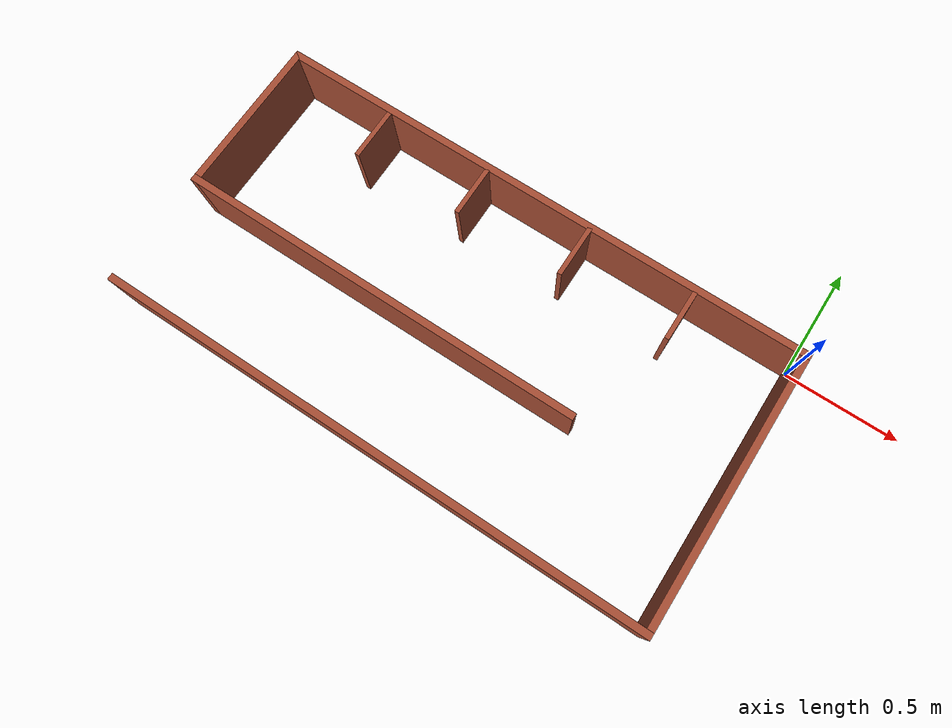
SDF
<?xml version='1.0'?>
<sdf version='1.7'>
  <model name='wrg_field'>
    <pose>-1.185 -0.585 0 0 -0 0</pose>
    <link name='Wall_16'>
      <collision name='Wall_16_Collision'>
        <geometry>
          <box>
            <size>1.2 0.03 0.3</size>
          </box>
        </geometry>
        <pose>0 0 0.15 0 -0 0</pose>
      </collision>
      <visual name='Wall_16_Visual'>
        <pose>0 0 0.15 0 -0 0</pose>
        <geometry>
          <box>
            <size>1.2 0.03 0.3</size>
          </box>
        </geometry>
        <material>
          <script>
            <uri>file://media/materials/scripts/gazebo.material</uri>
            <name>Gazebo/Bricks</name>
          </script>
          <ambient>1 1 1 1</ambient>
        </material>
        <meta>
          <layer>0</layer>
        </meta>
      </visual>
      <pose>1.185 0 0 0 -0 -1.5708</pose>
    </link>
    <link name='Wall_18'>
      <collision name='Wall_18_Collision'>
        <geometry>
          <box>
            <size>2.4 0.03 0.3</size>
          </box>
        </geometry>
        <pose>0 0 0.15 0 -0 0</pose>
      </collision>
      <visual name='Wall_18_Visual'>
        <pose>0 0 0.15 0 -0 0</pose>
        <geometry>
          <box>
            <size>2.4 0.03 0.3</size>
          </box>
        </geometry>
        <material>
          <script>
            <uri>file://media/materials/scripts/gazebo.material</uri>
            <name>Gazebo/Bricks</name>
          </script>
          <ambient>1 1 1 1</ambient>
        </material>
        <meta>
          <layer>0</layer>
        </meta>
      </visual>
      <pose>0 0.585 0 0 -0 3.14159</pose>
    </link>
    <link name='Wall_20'>
      <collision name='Wall_20_Collision'>
        <geometry>
          <box>
            <size>0.24 0.02 0.3</size>
          </box>
        </geometry>
        <pose>0 0 0.15 0 -0 0</pose>
      </collision>
      <visual name='Wall_20_Visual'>
        <pose>0 0 0.15 0 -0 0</pose>
        <geometry>
          <box>
            <size>0.24 0.02 0.3</size>
          </box>
        </geometry>
        <material>
          <script>
            <uri>file://media/materials/scripts/gazebo.material</uri>
            <name>Gazebo/Bricks</name>
          </script>
          <ambient>1 1 1 1</ambient>
        </material>
        <meta>
          <layer>0</layer>
        </meta>
      </visual>
      <pose>0.711 0.475 0 0 -0 -1.5708</pose>
    </link>
    <link name='Wall_22'>
      <collision name='Wall_22_Collision'>
        <geometry>
          <box>
            <size>0.24 0.02 0.3</size>
          </box>
        </geometry>
        <pose>0 0 0.15 0 -0 0</pose>
      </collision>
      <visual name='Wall_22_Visual'>
        <pose>0 0 0.15 0 -0 0</pose>
        <geometry>
          <box>
            <size>0.24 0.02 0.3</size>
          </box>
        </geometry>
        <material>
          <script>
            <uri>file://media/materials/scripts/gazebo.material</uri>
            <name>Gazebo/Bricks</name>
          </script>
          <ambient>1 1 1 1</ambient>
        </material>
        <meta>
          <layer>0</layer>
        </meta>
      </visual>
      <pose>0.237 0.475 0 0 -0 -1.5708</pose>
    </link>
    <link name='Wall_24'>
      <collision name='Wall_24_Collision'>
        <geometry>
          <box>
            <size>0.24 0.02 0.3</size>
          </box>
        </geometry>
        <pose>0 0 0.15 0 -0 0</pose>
      </collision>
      <visual name='Wall_24_Visual'>
        <pose>0 0 0.15 0 -0 0</pose>
        <geometry>
          <box>
            <size>0.24 0.02 0.3</size>
          </box>
        </geometry>
        <material>
          <script>
            <uri>file://media/materials/scripts/gazebo.material</uri>
            <name>Gazebo/Bricks</name>
          </script>
          <ambient>1 1 1 1</ambient>
        </material>
        <meta>
          <layer>0</layer>
        </meta>
      </visual>
      <pose>-0.237 0.475 0 0 -0 -1.5708</pose>
    </link>
    <link name='Wall_28'>
      <collision name='Wall_28_Collision'>
        <geometry>
          <box>
            <size>0.25 0.02 0.3</size>
          </box>
        </geometry>
        <pose>0 0 0.15 0 -0 0</pose>
      </collision>
      <visual name='Wall_28_Visual'>
        <pose>0 0 0.15 0 -0 0</pose>
        <geometry>
          <box>
            <size>0.25 0.02 0.3</size>
          </box>
        </geometry>
        <material>
          <script>
            <uri>file://media/materials/scripts/gazebo.material</uri>
            <name>Gazebo/Bricks</name>
          </script>
          <ambient>1 1 1 1</ambient>
        </material>
        <meta>
          <layer>0</layer>
        </meta>
      </visual>
      <pose>-0.711 0.47 0 0 -0 -1.5708</pose>
    </link>
    <link name='Wall_30'>
      <collision name='Wall_30_Collision'>
        <geometry>
          <box>
            <size>0.7 0.03 0.3</size>
          </box>
        </geometry>
        <pose>0 0 0.15 0 -0 0</pose>
      </collision>
      <visual name='Wall_30_Visual'>
        <pose>0 0 0.15 0 -0 0</pose>
        <geometry>
          <box>
            <size>0.7 0.03 0.3</size>
          </box>
        </geometry>
        <material>
          <script>
            <uri>file://media/materials/scripts/gazebo.material</uri>
            <name>Gazebo/Bricks</name>
          </script>
          <ambient>1 1 1 1</ambient>
        </material>
        <meta>
          <layer>0</layer>
        </meta>
      </visual>
      <pose>-1.185 0.25 0 0 -0 -1.5708</pose>
    </link>
    <link name='Wall_32'>
      <collision name='Wall_32_Collision'>
        <geometry>
          <box>
            <size>1.78 0.03 0.3</size>
          </box>
        </geometry>
        <pose>0 0 0.15 0 -0 0</pose>
      </collision>
      <visual name='Wall_32_Visual'>
        <pose>0 0 0.15 0 -0 0</pose>
        <geometry>
          <box>
            <size>1.78 0.03 0.3</size>
          </box>
        </geometry>
        <material>
          <script>
            <uri>file://media/materials/scripts/gazebo.material</uri>
            <name>Gazebo/Bricks</name>
          </script>
          <ambient>1 1 1 1</ambient>
        </material>
        <meta>
          <layer>0</layer>
        </meta>
      </visual>
      <pose>-0.31 -0.085 0 0 -0 0</pose>
    </link>
    <link name='Wall_34'>
      <collision name='Wall_34_Collision'>
        <geometry>
          <box>
            <size>2.4 0.03 0.3</size>
          </box>
        </geometry>
        <pose>0 0 0.15 0 -0 0</pose>
      </collision>
      <visual name='Wall_34_Visual'>
        <pose>0 0 0.15 0 -0 0</pose>
        <geometry>
          <box>
            <size>2.4 0.03 0.3</size>
          </box>
        </geometry>
        <material>
          <script>
            <uri>file://media/materials/scripts/gazebo.material</uri>
            <name>Gazebo/Bricks</name>
          </script>
          <ambient>1 1 1 1</ambient>
        </material>
        <meta>
          <layer>0</layer>
        </meta>
      </visual>
      <pose>0 -0.585 0 0 -0 3.14159</pose>
    </link>
    <static>1</static>
  </model>
</sdf>
